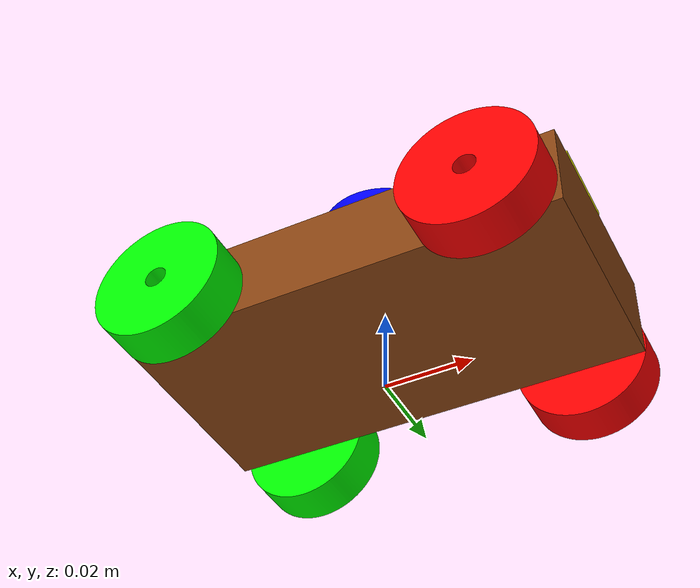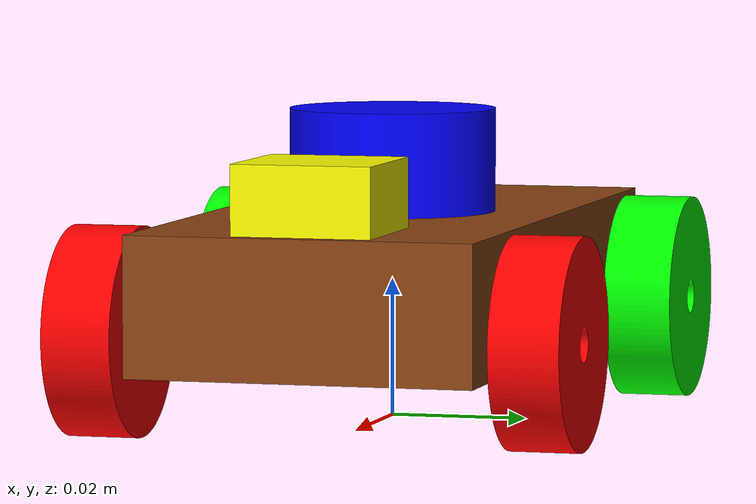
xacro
<?xml version="1.0" ?>
<robot name="amr" xmlns:xacro="http://www.ros.org/wiki/xacro">

<xacro:include filename="$(find amr_description)/urdf/materials.xacro" />
<xacro:include filename="$(find amr_description)/urdf/amr.ros2control" />
<xacro:include filename="$(find amr_description)/urdf/amr.gazebo" />
<link name="base_link">
  <inertial>
    <origin xyz="5.241562912130021e-15 -2.8990945310453658e-18 0.020100141035049902" rpy="0 0 0"/>
    <mass value="0.7695865610433251"/>
    <inertia ixx="0.000186" iyy="0.000661" izz="0.000796" ixy="0.0" iyz="-0.0" ixz="0.0"/>
  </inertial>
  <visual>
    <origin xyz="0 0 0" rpy="0 0 0"/>
    <geometry>
      <mesh filename="file://$(find amr_description)/meshes/base_link.stl" scale="0.001 0.001 0.001"/>
    </geometry>
    <material name="brown"/>
  </visual>
  <collision>
    <origin xyz="0 0 0" rpy="0 0 0"/>
    <geometry>
      <mesh filename="file://$(find amr_description)/meshes/base_link.stl" scale="0.001 0.001 0.001"/>
    </geometry>
  </collision>
</link>

<link name="lidar_link_1">
  <inertial>
    <origin xyz="1.6753539062853094e-18 3.3507078125706188e-18 0.007500000000000007" rpy="0 0 0"/>
    <mass value="0.08323257036604456"/>
    <inertia ixx="6e-06" iyy="6e-06" izz="9e-06" ixy="0.0" iyz="0.0" ixz="0.0"/>
  </inertial>
  <visual>
    <origin xyz="-0.0 -0.0 -0.03" rpy="0 0 0"/>
    <geometry>
      <mesh filename="file://$(find amr_description)/meshes/lidar_link_1.stl" scale="0.001 0.001 0.001"/>
    </geometry>
    <material name="blue"/>
  </visual>
  <collision>
    <origin xyz="-0.0 -0.0 -0.03" rpy="0 0 0"/>
    <geometry>
      <mesh filename="file://$(find amr_description)/meshes/lidar_link_1.stl" scale="0.001 0.001 0.001"/>
    </geometry>
  </collision>
</link>

<link name="camera_link_1">
  <inertial>
    <origin xyz="-0.011940000000000027 1.3551523844546316e-17 0.005000000000000011" rpy="0 0 0"/>
    <mass value="0.0314"/>
    <inertia ixx="1e-06" iyy="1e-06" izz="2e-06" ixy="-0.0" iyz="0.0" ixz="-0.0"/>
  </inertial>
  <visual>
    <origin xyz="-0.05 -0.0 -0.03" rpy="0 0 0"/>
    <geometry>
      <mesh filename="file://$(find amr_description)/meshes/camera_link_1.stl" scale="0.001 0.001 0.001"/>
    </geometry>
    <material name="yellow"/>
  </visual>
  <collision>
    <origin xyz="-0.05 -0.0 -0.03" rpy="0 0 0"/>
    <geometry>
      <mesh filename="file://$(find amr_description)/meshes/camera_link_1.stl" scale="0.001 0.001 0.001"/>
    </geometry>
  </collision>
</link>

<link name="right_rear_wheel_1">
  <inertial>
    <origin xyz="-7.4870665223159e-15 -0.0069999999999999715 -1.734723475976807e-18" rpy="0 0 0"/>
    <mass value="0.05394703634836216"/>
    <inertia ixx="4e-06" iyy="6e-06" izz="4e-06" ixy="-0.0" iyz="0.0" ixz="0.0"/>
  </inertial>
  <visual>
    <origin xyz="0.035 0.025 -0.015" rpy="0 0 0"/>
    <geometry>
      <mesh filename="file://$(find amr_description)/meshes/right_rear_wheel_1.stl" scale="0.001 0.001 0.001"/>
    </geometry>
    <material name="green"/>
  </visual>
  <collision>
    <origin xyz="0.035 0.025 -0.015" rpy="0 0 0"/>
    <geometry>
      <mesh filename="file://$(find amr_description)/meshes/right_rear_wheel_1.stl" scale="0.001 0.001 0.001"/>
    </geometry>
  </collision>
</link>

<link name="right_forward_wheel_1">
  <inertial>
    <origin xyz="-7.45931094670027e-15 -0.007000000000000006 -6.938893903907228e-18" rpy="0 0 0"/>
    <mass value="0.053947036348362176"/>
    <inertia ixx="4e-06" iyy="6e-06" izz="4e-06" ixy="0.0" iyz="-0.0" ixz="-0.0"/>
  </inertial>
  <visual>
    <origin xyz="-0.035 0.025 -0.015" rpy="0 0 0"/>
    <geometry>
      <mesh filename="file://$(find amr_description)/meshes/right_forward_wheel_1.stl" scale="0.001 0.001 0.001"/>
    </geometry>
    <material name="red"/>
  </visual>
  <collision>
    <origin xyz="-0.035 0.025 -0.015" rpy="0 0 0"/>
    <geometry>
      <mesh filename="file://$(find amr_description)/meshes/right_forward_wheel_1.stl" scale="0.001 0.001 0.001"/>
    </geometry>
  </collision>
</link>

<link name="left_forward_wheel_1">
  <inertial>
    <origin xyz="7.473188734508085e-15 0.006999999999999999 -1.734723475976807e-18" rpy="0 0 0"/>
    <mass value="0.05394703634836216"/>
    <inertia ixx="4e-06" iyy="6e-06" izz="4e-06" ixy="0.0" iyz="0.0" ixz="-0.0"/>
  </inertial>
  <visual>
    <origin xyz="-0.035 -0.025 -0.015" rpy="0 0 0"/>
    <geometry>
      <mesh filename="file://$(find amr_description)/meshes/left_forward_wheel_1.stl" scale="0.001 0.001 0.001"/>
    </geometry>
    <material name="red"/>
  </visual>
  <collision>
    <origin xyz="-0.035 -0.025 -0.015" rpy="0 0 0"/>
    <geometry>
      <mesh filename="file://$(find amr_description)/meshes/left_forward_wheel_1.stl" scale="0.001 0.001 0.001"/>
    </geometry>
  </collision>
</link>

<link name="left_rear_wheel_1">
  <inertial>
    <origin xyz="7.466249840604178e-15 0.006999999999999999 -3.469446951953614e-18" rpy="0 0 0"/>
    <mass value="0.053947036348362176"/>
    <inertia ixx="4e-06" iyy="6e-06" izz="4e-06" ixy="0.0" iyz="-0.0" ixz="0.0"/>
  </inertial>
  <visual>
    <origin xyz="0.035 -0.025 -0.015" rpy="0 0 0"/>
    <geometry>
      <mesh filename="file://$(find amr_description)/meshes/left_rear_wheel_1.stl" scale="0.001 0.001 0.001"/>
    </geometry>
    <material name="green"/>
  </visual>
  <collision>
    <origin xyz="0.035 -0.025 -0.015" rpy="0 0 0"/>
    <geometry>
      <mesh filename="file://$(find amr_description)/meshes/left_rear_wheel_1.stl" scale="0.001 0.001 0.001"/>
    </geometry>
  </collision>
</link>

<joint name="lidar_link_joint" type="fixed">
  <origin xyz="0.0 0.0 0.03" rpy="0 0 0"/>
  <parent link="base_link"/>
  <child link="lidar_link_1"/>
</joint>

<joint name="camera_link_joint" type="fixed">
  <origin xyz="0.05 0.0 0.03" rpy="0 0 0"/>
  <parent link="base_link"/>
  <child link="camera_link_1"/>
</joint>

<joint name="right_rear_wheel_joint" type="continuous">
  <origin xyz="-0.035 -0.025 0.015" rpy="0 0 0"/>
  <parent link="base_link"/>
  <child link="right_rear_wheel_1"/>
  <axis xyz="0.0 1.0 0.0"/>
</joint>

<joint name="right_forward_wheel_joint" type="continuous">
  <origin xyz="0.035 -0.025 0.015" rpy="0 0 0"/>
  <parent link="base_link"/>
  <child link="right_forward_wheel_1"/>
  <axis xyz="0.0 1.0 0.0"/>
</joint>

<joint name="left_forward_wheel_joint" type="continuous">
  <origin xyz="0.035 0.025 0.015" rpy="0 0 0"/>
  <parent link="base_link"/>
  <child link="left_forward_wheel_1"/>
  <axis xyz="0.0 1.0 0.0"/>
</joint>

<joint name="left_rear_wheel_joint" type="continuous">
  <origin xyz="-0.035 0.025 0.015" rpy="0 0 0"/>
  <parent link="base_link"/>
  <child link="left_rear_wheel_1"/>
  <axis xyz="0.0 -1.0 0.0"/>
</joint>

</robot>

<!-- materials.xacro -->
<robot name="amr" xmlns:xacro="http://www.ros.org/wiki/xacro" >

<material name="silver">
  <color rgba="0.700 0.700 0.700 1.000"/>
</material>

<material name="yellow">
    <color rgba="1.000 1.000 0.000 1.000"/>
</material>

<!-- Green -->
<material name="green">
    <color rgba="0.000 1.000 0.000 1.000"/>
</material>

<!-- Brown -->
<material name="brown">
    <color rgba="0.545 0.271 0.075 1.000"/>
</material>

<!-- Blue -->
<material name="blue">
    <color rgba="0.000 0.000 1.000 1.000"/>
</material>

<!-- Red -->
<material name="red">
    <color rgba="1.000 0.000 0.000 1.000"/>
</material>

</robot>

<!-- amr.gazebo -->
<robot name="amr" xmlns:xacro="http://www.ros.org/wiki/xacro" >

<xacro:property name="body_color" value="Gazebo/Silver" />

<gazebo reference="base_link">
  <material>${body_color}</material>
  <mu1>0.2</mu1>
  <mu2>0.2</mu2>
  <self_collide>true</self_collide>
  <gravity>true</gravity>
</gazebo>

<gazebo reference="lidar_link_1">
  <material>${body_color}</material>
  <mu1>0.2</mu1>
  <mu2>0.2</mu2>
  <self_collide>true</self_collide>
</gazebo>

<gazebo reference="camera_link_1">
  <material>${body_color}</material>
  <mu1>0.2</mu1>
  <mu2>0.2</mu2>
  <self_collide>true</self_collide>
</gazebo>

<gazebo reference="right_rear_wheel_1">
  <material>${body_color}</material>
  <mu1>0.2</mu1>
  <mu2>0.2</mu2>
  <self_collide>true</self_collide>
</gazebo>

<gazebo reference="right_forward_wheel_1">
  <material>${body_color}</material>
  <mu1>0.2</mu1>
  <mu2>0.2</mu2>
  <self_collide>true</self_collide>
</gazebo>

<gazebo reference="left_forward_wheel_1">
  <material>${body_color}</material>
  <mu1>0.2</mu1>
  <mu2>0.2</mu2>
  <self_collide>true</self_collide>
</gazebo>

<gazebo reference="left_rear_wheel_1">
  <material>${body_color}</material>
  <mu1>0.2</mu1>
  <mu2>0.2</mu2>
  <self_collide>true</self_collide>
</gazebo>

</robot>
